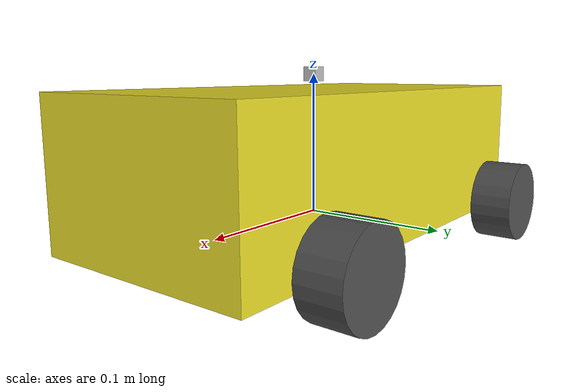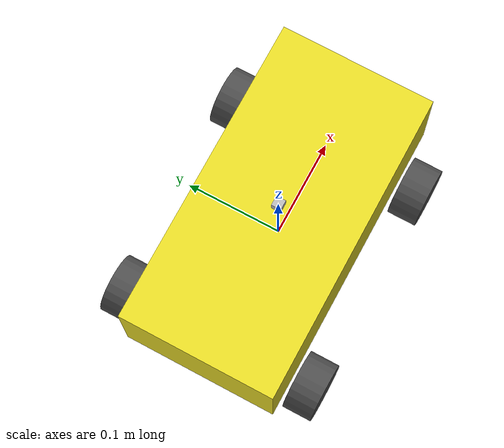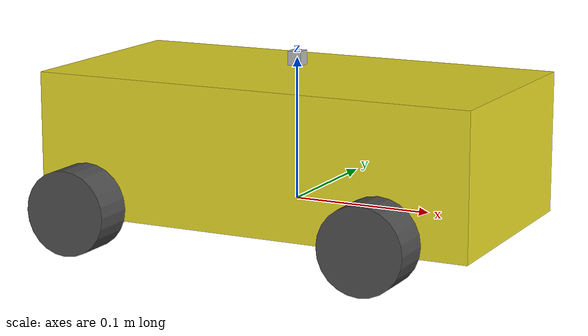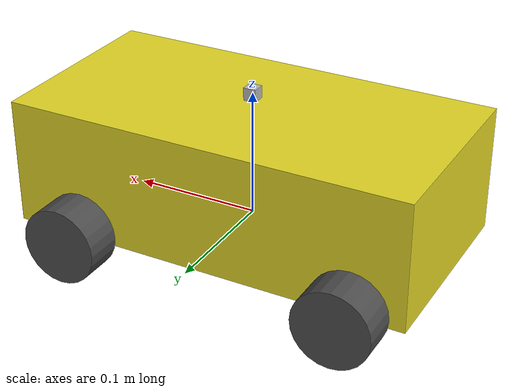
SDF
<?xml version='1.0'?>
<sdf version="1.4">
  <model name="tank">

    <link name="base_link">
      <self_collide>0</self_collide>
      <pose>0 0 0.04 0 0 0</pose>

      <inertial>
        <pose>0 0 0 0 0 0</pose>
        <mass>10.0</mass>
        <inertia>
          <ixx>0.2</ixx>
          <ixy>0.0</ixy>
          <ixz>0.0</ixz>
          <iyy>0.3</iyy>
          <iyz>0.0</iyz>
          <izz>0.4</izz>
        </inertia>
      </inertial>

      <collision name="base_link_collision">
        <geometry>
          <box>
            <size>0.32 0.16 0.1</size>
          </box>
        </geometry>
      </collision>

      <visual name="base_link_visual">
        <geometry>
          <box>
            <size>0.32 0.16 0.1</size>
          </box>
        </geometry>
        <material>
          <script>
            <name>Gazebo/DarkYellow</name>
            <uri>__default__</uri>
          </script>
        </material>
      </visual>

    </link>

    <!-- Wheel 1 -->

    <link name="drum1">
      <self_collide>1</self_collide>
      <pose>0.1 0.1 0 1.57079632679 0 0</pose>

      <inertial>
        <pose>0 0 0 1.57 0 0</pose>
        <mass>0.4</mass>
        <inertia>
          <ixx>0.0003</ixx>
          <ixy>0</ixy>
          <ixz>0</ixz>
          <iyy>0.0003</iyy>
          <iyz>0</iyz>
          <izz>0.0004</izz>
        </inertia>
      </inertial>

      <collision name="drum1_collision">
        <geometry>
          <cylinder>
            <radius>0.03</radius>
            <length>0.03</length>
          </cylinder>
        </geometry>
      </collision>

      <visual name="drum1_visual">
        <geometry>
          <cylinder>
            <radius>0.03</radius>
            <length>0.03</length>
          </cylinder>
        </geometry>
        <material>
          <script>
            <name>Gazebo/DarkGrey</name>
            <uri>__default__</uri>
          </script>
        </material>
      </visual>

    </link>

    <joint type="revolute" name="drum_joint1">
      <pose>0 0 0 0 0 0</pose>
      <parent>base_link</parent>
      <child>drum1</child>
      <axis>
        <xyz>0 1 0</xyz>
      </axis>
    </joint>

    <!-- Wheel 2 -->

    <link name="drum2">
      <self_collide>1</self_collide>
      <pose>0.1 -0.1 0 1.57079632679 0 0</pose>

      <inertial>
        <pose>0 0 0 1.57 0 0</pose>
        <mass>0.4</mass>
        <inertia>
          <ixx>0.0003</ixx>
          <ixy>0</ixy>
          <ixz>0</ixz>
          <iyy>0.0003</iyy>
          <iyz>0</iyz>
          <izz>0.0004</izz>
        </inertia>
      </inertial>

      <collision name="drum2_collision">
        <geometry>
          <cylinder>
            <radius>0.03</radius>
            <length>0.03</length>
          </cylinder>
        </geometry>
      </collision>

      <visual name="drum2_visual">
        <geometry>
          <cylinder>
            <radius>0.03</radius>
            <length>0.03</length>
          </cylinder>
        </geometry>
        <material>
          <script>
            <name>Gazebo/DarkGrey</name>
            <uri>__default__</uri>
          </script>
        </material>
      </visual>

    </link>

    <joint type="revolute" name="drum_joint2">
      <pose>0 0 0 0 0 0</pose>
      <parent>base_link</parent>
      <child>drum2</child>
      <axis>
        <xyz>0 1 0</xyz>
      </axis>
    </joint>

    <!-- Wheel 3 -->

    <link name="drum3">
      <self_collide>1</self_collide>
      <pose>-0.12 0.1 0 1.57079632679 0 0</pose>

      <inertial>
        <pose>0 0 0 1.57 0 0</pose>
        <mass>0.4</mass>
        <inertia>
          <ixx>0.0003</ixx>
          <ixy>0</ixy>
          <ixz>0</ixz>
          <iyy>0.0003</iyy>
          <iyz>0</iyz>
          <izz>0.0004</izz>
        </inertia>
      </inertial>

      <collision name="drum3_collision">
        <geometry>
          <cylinder>
            <radius>0.03</radius>
            <length>0.03</length>
          </cylinder>
        </geometry>
      </collision>

      <visual name="drum3_visual">
        <geometry>
          <cylinder>
            <radius>0.03</radius>
            <length>0.03</length>
          </cylinder>
        </geometry>
        <material>
          <script>
            <name>Gazebo/DarkGrey</name>
            <uri>__default__</uri>
          </script>
        </material>
      </visual>

    </link>

    <joint type="revolute" name="drum_joint3">
      <pose>0 0 0 0 0 0</pose>
      <parent>base_link</parent>
      <child>drum3</child>
      <axis>
        <xyz>0 1 0</xyz>
      </axis>
    </joint>

    <!-- Wheel 4 -->

    <link name="drum4">
      <self_collide>1</self_collide>
      <pose>-0.12 -0.1 0 1.57079632679 0 0</pose>

      <inertial>
        <pose>0 0 0 1.57 0 0</pose>
        <mass>0.4</mass>
        <inertia>
          <ixx>0.0003</ixx>
          <ixy>0</ixy>
          <ixz>0</ixz>
          <iyy>0.0003</iyy>
          <iyz>0</iyz>
          <izz>0.0004</izz>
        </inertia>
      </inertial>

      <collision name="drum4_collision">
        <geometry>
          <cylinder>
            <radius>0.03</radius>
            <length>0.03</length>
          </cylinder>
        </geometry>
      </collision>

      <visual name="drum4_visual">
        <geometry>
          <cylinder>
            <radius>0.03</radius>
            <length>0.03</length>
          </cylinder>
        </geometry>
        <material>
          <script>
            <name>Gazebo/DarkGrey</name>
            <uri>__default__</uri>
          </script>
        </material>
      </visual>

    </link>

    <joint type="revolute" name="drum_joint4">
      <pose>0 0 0 0 0 0</pose>
      <parent>base_link</parent>
      <child>drum4</child>
      <axis>
        <xyz>0 1 0</xyz>
      </axis>
    </joint>

    <!-- Detph Camera -->

    <link name="realsense_link">
      <pose>0 0 0.1 0 0 3.14</pose>

      <inertial>
        <pose>0 0 0 0 0 0</pose>
        <mass>0.015</mass>
        <inertia>
          <ixx>1e-05</ixx>
          <ixy>0</ixy>
          <ixz>0</ixz>
          <iyy>1e-05</iyy>
          <iyz>0</iyz>
          <izz>1e-05</izz>
        </inertia>
      </inertial>

      <visual name='visual'>
        <geometry>
          <box>
            <size>0.01 0.01 0.01</size>
          </box>
        </geometry>
      </visual>

      <sensor name="depth_camera" type="depth">
        <update_rate>30</update_rate>
        <camera>
          <horizontal_fov>1.02974</horizontal_fov>
          <image>
            <format>R8G8B8</format>
            <width>640</width>
            <height>480</height>
          </image>
          <clip>
            <near>0.5</near>
            <far>18</far>
          </clip>
        </camera>
        <plugin filename="libgazebo_ros_openni_kinect.so" name="camera_controller">
          <cameraName>camera</cameraName>
          <alwaysOn>true</alwaysOn>
          <updateRate>20</updateRate>
          <pointCloudCutoff>0.2</pointCloudCutoff>
          <pointCloudCutoffMax>20</pointCloudCutoffMax>
          <imageTopicName>rgb/image_raw</imageTopicName>
          <cameraInfoTopicName>rgb/camera_info</cameraInfoTopicName>
          <depthImageTopicName>depth/image_raw</depthImageTopicName>
          <depthImageCameraInfoTopicName>depth/camera_info</depthImageCameraInfoTopicName>
          <pointCloudTopicName>depth/points</pointCloudTopicName>
          <frameName>camera_link</frameName>
          <distortion_k1>0.0</distortion_k1>
          <distortion_k2>0.0</distortion_k2>
          <distortion_k3>0.0</distortion_k3>
          <distortion_t1>0.0</distortion_t1>
          <distortion_t2>0.0</distortion_t2>
        </plugin>
      </sensor>
    </link>

    <joint type="fixed" name="realsense_joint">
      <parent>base_link</parent>
      <child>realsense_link</child>
      <pose>0 0 0 0 0 0</pose>
      <axis>
        <xyz>0 0 1</xyz>
      </axis>
    </joint>

    <plugin name="differential_drive_controller" filename="libgazebo_ros_diff_drive.so">
      <!-- Plugin update rate in Hz -->
      <updateRate>30</updateRate>
      <!-- Name of left joint, defaults to `left_joint` -->
      <leftJoint>drum_joint4</leftJoint>
      <!-- Name of right joint, defaults to `right_joint` -->
      <rightJoint>drum_joint3</rightJoint>
      <!-- The distance from the center of one wheel to the other, in meters, defaults to 0.34 m -->
      <wheelSeparation>0.5380</wheelSeparation>
      <!-- Diameter of the wheels, in meters, defaults to 0.15 m -->
      <wheelDiameter>0.2410</wheelDiameter>
      <!-- Wheel acceleration, in rad/s^2, defaults to 0.0 rad/s^2 -->
      <wheelAcceleration>1.0</wheelAcceleration>
      <!-- Maximum torque which the wheels can produce, in Nm, defaults to 5 Nm -->
      <wheelTorque>300</wheelTorque>
      <!-- Topic to receive geometry_msgs/Twist message commands, defaults to `cmd_vel` -->
      <commandTopic>cmd_vel</commandTopic>
      <!-- Topic to publish nav_msgs/Odometry messages, defaults to `odom` -->
      <odometryTopic>robotodom</odometryTopic>
      <!-- Odometry frame, defaults to `odom` -->
      <odometryFrame>robotodom</odometryFrame>
      <!-- Robot frame to calculate odometry from, defaults to `base_footprint` -->
      <robotBaseFrame>base_footprint</robotBaseFrame>
      <!-- Odometry source, 0 for ENCODER, 1 for WORLD, defaults to WORLD -->
      <odometrySource>1</odometrySource>
      <!-- Set to true to publish transforms for the wheel links, defaults to false -->
      <publishWheelTF>true</publishWheelTF>
      <!-- Set to true to publish transforms for the odometry, defaults to true -->
      <publishOdom>true</publishOdom>
      <!-- Set to true to publish sensor_msgs/JointState on /joint_states for the wheel joints, defaults to false -->
      <publishWheelJointState>true</publishWheelJointState>
      <!-- Set to true to swap right and left wheels, defaults to true -->
      <legacyMode>false</legacyMode>
    </plugin>

  </model>
</sdf>
